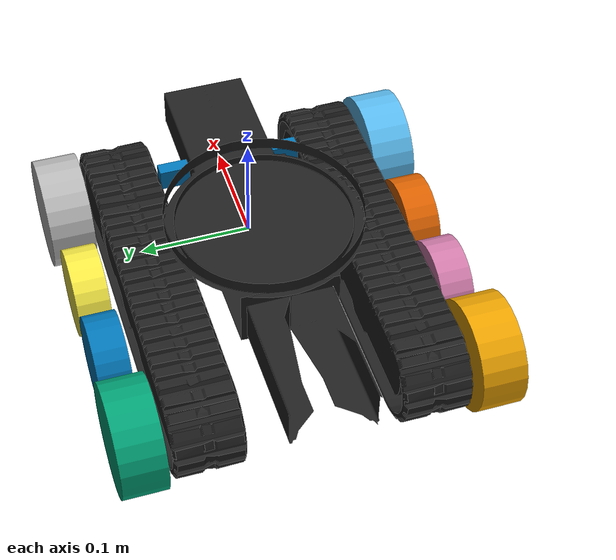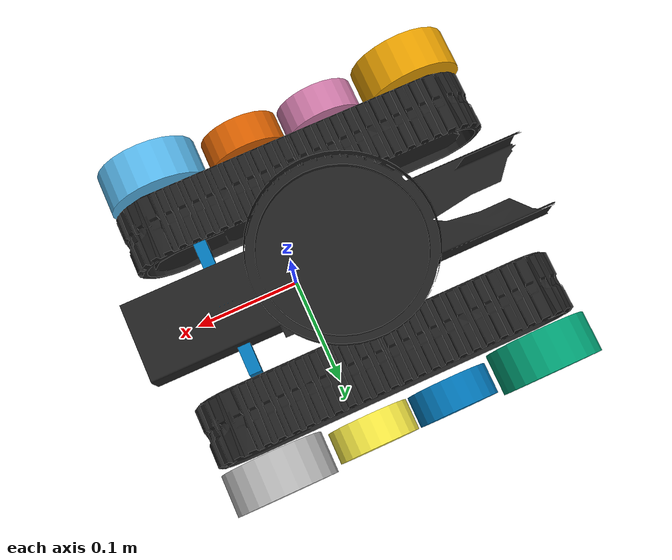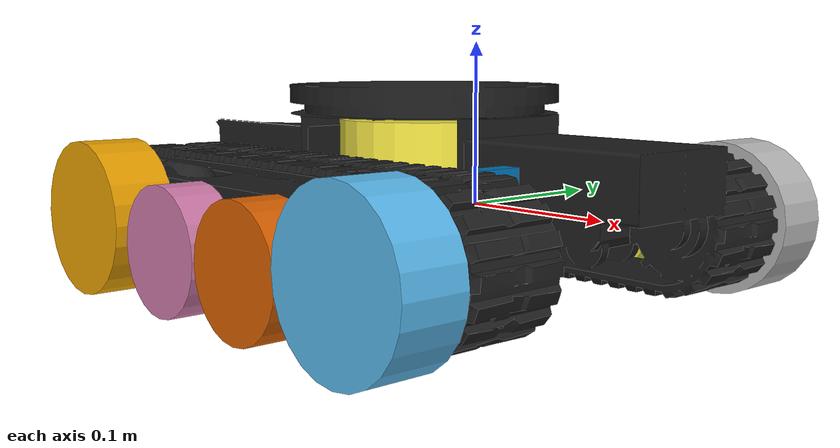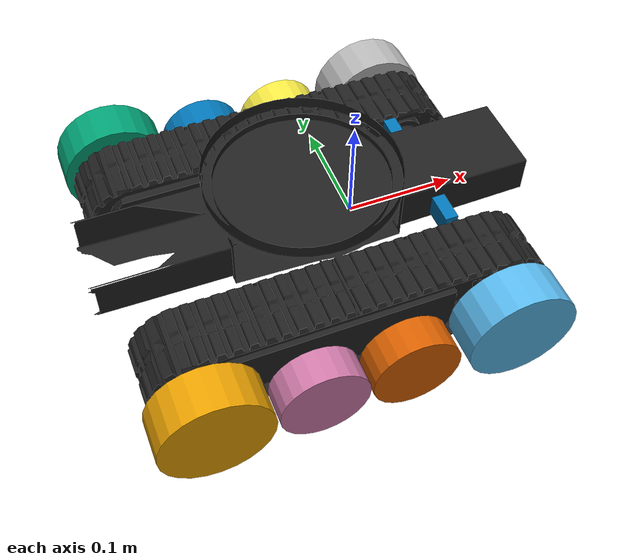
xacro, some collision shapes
<?xml version="1.0" ?>
<robot name="turtlebot3_waffle" xmlns:xacro="http://ros.org/wiki/xacro">
  <xacro:include filename="$(find turtlebot3_description)/urdf/common_properties.xacro"/>
  <xacro:include filename="$(find turtlebot3_description)/urdf/turtlebot3_waffle.gazebo.xacro"/>

  <xacro:property name="r200_cam_rgb_px" value="0.005"/>
  <xacro:property name="r200_cam_rgb_py" value="0.018"/>
  <xacro:property name="r200_cam_rgb_pz" value="0.013"/>
  <xacro:property name="r200_cam_depth_offset" value="0.01"/>

  <link name="base_footprint"/>

  <joint name="base_joint" type="fixed">
    <parent link="base_footprint"/>
    <child link="base_link" />
    <origin xyz="0 0 0.010" rpy="0 0 0"/>
  </joint>

  <link name="base_link">
    <visual>
      <origin xyz="-0.064 0 -0.09" rpy="0 0 0"/>
      <geometry>
        <mesh filename="package://turtlebot3_description/meshes/bases/turtlebot_improv.stl" scale="0.0025 0.0025 0.0025"/>
      </geometry>
      <material name="light_black"/>
    </visual>

    <collision>
      <origin xyz="-0.064 0 0.047" rpy="0 0 0"/>
      <geometry>
        <box size="0.266 0.266 0.094"/>
      </geometry>
    </collision>

    <inertial>
      <origin xyz="0 0 0" rpy="0 0 0"/>
      <mass value="1.3729096e+00"/>
      <inertia ixx="8.7002718e-03" ixy="-4.7576583e-05" ixz="1.1160499e-04"
               iyy="8.6195418e-03" iyz="-3.5422299e-06"
               izz="1.4612727e-02" />
    </inertial>
  </link>

   <!-- linker hinterer Reifen l0oo-->

  <joint name="wheel_left_behind_joint" type="continuous">
    <parent link="base_link"/>
    <child link="wheel_left_behind_link"/>
    <origin xyz="-0.1855 0.155 -0.023" rpy="0 0 0"/>
    <axis xyz="0 1 0"/>
  </joint>

  <link name="wheel_left_behind_link">
    <visual>
      <origin xyz="0 0 0" rpy="1.57 0 0"/>
      <geometry>
     	 <cylinder radius="0.05" length="0.04"/>
      </geometry>
      <material name="dark"/>
    </visual>

    <collision>
      <origin xyz="0 0 0" rpy="1.57 0 0"/>
      <geometry>
        <cylinder length="0.04" radius="0.05"/>
      </geometry>
    </collision>

    <inertial>
      <origin xyz="0 0 0" />
      <mass value="2.8498940e-02" />
      <inertia ixx="1.1175580e-05" ixy="-4.2369783e-11" ixz="-5.9381719e-09"
               iyy="1.1192413e-05" iyz="-1.4400107e-11"
               izz="2.0712558e-05" />
      </inertial>
  </link>

	<!-- linker mittel vorne Reifen loo0o-->

  <joint name="wheel_left_mittelvorne_joint" type="continuous">
    <parent link="base_link"/>
    <child link="wheel_left_mittelvorne_link"/>
    <origin xyz="-0.010 0.155 -0.033" rpy="0 0 0"/>
    <axis xyz="0 1 0"/>
  </joint>

  <link name="wheel_left_mittelvorne_link">
    <visual>
      <origin xyz="0 0 0" rpy="1.57 0 0"/>
      <geometry>
     	 <cylinder radius="0.04" length="0.03"/>
      </geometry>
      <material name="dark"/>
    </visual>

    <collision>
      <origin xyz="0 0 0" rpy="1.57 0 0"/>
      <geometry>
        <cylinder length="0.03" radius="0.04"/>
      </geometry>
    </collision>

    <inertial>
      <origin xyz="0 0 0" />
      <mass value="2.8498940e-02" />
      <inertia ixx="1.1175580e-05" ixy="-4.2369783e-11" ixz="-5.9381719e-09"
               iyy="1.1192413e-05" iyz="-1.4400107e-11"
               izz="2.0712558e-05" />
      </inertial>
  </link>

	<!-- linker mittel hinten Reifen lo0oo-->

  <joint name="wheel_mittelhintenleft_joint" type="continuous">
    <parent link="base_link"/>
    <child link="wheel_mittelhintenleft_link"/>
    <origin xyz="-0.092 0.155 -0.033" rpy="0 0 0"/>
    <axis xyz="0 1 0"/>
  </joint>

  <link name="wheel_mittelhintenleft_link">
    <visual>
      <origin xyz="0 0 0" rpy="1.57 0 0"/>
      <geometry>
     	 <cylinder radius="0.04" length="0.03"/>
      </geometry>
      <material name="dark"/>
    </visual>

    <collision>
      <origin xyz="0 0 0" rpy="1.57 0 0"/>
      <geometry>
        <cylinder length="0.03" radius="0.04"/>
      </geometry>
    </collision>

    <inertial>
      <origin xyz="0 0 0" />
      <mass value="2.8498940e-02" />
      <inertia ixx="1.1175580e-05" ixy="-4.2369783e-11" ixz="-5.9381719e-09"
               iyy="1.1192413e-05" iyz="-1.4400107e-11"
               izz="2.0712558e-05" />
      </inertial>
  </link>

	<!-- rechter mittel vorne Reifen roo0o-->

  <joint name="wheel_right_mittelvorne_joint" type="continuous">
    <parent link="base_link"/>
    <child link="wheel_right_mittelvorne_link"/>
    <origin xyz="-0.010 -0.155 -0.033" rpy="0 0 0"/>
    <axis xyz="0 1 0"/>
  </joint>

  <link name="wheel_right_mittelvorne_link">
    <visual>
      <origin xyz="0 0 0" rpy="1.57 0 0"/>
      <geometry>
     	 <cylinder radius="0.04" length="0.03"/>
      </geometry>
      <material name="dark"/>
    </visual>

    <collision>
      <origin xyz="0 0 0" rpy="1.57 0 0"/>
      <geometry>
        <cylinder length="0.03" radius="0.04"/>
      </geometry>
    </collision>

    <inertial>
      <origin xyz="0 0 0" />
      <mass value="2.8498940e-02" />
      <inertia ixx="1.1175580e-05" ixy="-4.2369783e-11" ixz="-5.9381719e-09"
               iyy="1.1192413e-05" iyz="-1.4400107e-11"
               izz="2.0712558e-05" />
      </inertial>
  </link>

	<!-- rechter mittel hinten Reifen ro0oo-->

  <joint name="wheel_mittelhintenright_joint" type="continuous">
    <parent link="base_link"/>
    <child link="wheel_mittelhintenright_link"/>
    <origin xyz="-0.092 -0.155 -0.033" rpy="0 0 0"/>
    <axis xyz="0 1 0"/>
  </joint>

  <link name="wheel_mittelhintenright_link">
    <visual>
      <origin xyz="0 0 0" rpy="1.57 0 0"/>
      <geometry>
     	 <cylinder radius="0.04" length="0.03"/>
      </geometry>
      <material name="dark"/>
    </visual>

    <collision>
      <origin xyz="0 0 0" rpy="1.57 0 0"/>
      <geometry>
        <cylinder length="0.03" radius="0.04"/>
      </geometry>
    </collision>

    <inertial>
      <origin xyz="0 0 0" />
      <mass value="2.8498940e-02" />
      <inertia ixx="1.1175580e-05" ixy="-4.2369783e-11" ixz="-5.9381719e-09"
               iyy="1.1192413e-05" iyz="-1.4400107e-11"
               izz="2.0712558e-05" />
      </inertial>
  </link>

   <!-- linker vorderer Reifen looo0-->

    <joint name="wheel_left_joint" type="continuous">
    <parent link="base_link"/>
    <child link="wheel_left_link"/>
    <origin xyz="0.085 0.155 -0.023" rpy="0 0 0"/>
    <axis xyz="0 1 0"/>
  </joint>

  <link name="wheel_left_link">
    <visual>
      <origin xyz="0 0 0" rpy="1.57 0 0"/>
      <geometry>
      	<cylinder radius="0.05" length="0.04"/>
      </geometry>
      <material name="dark"/>
    </visual>

    <collision>
      <origin xyz="0 0 0" rpy="1.57 0 0"/>
      <geometry>
        <cylinder length="0.04" radius="0.05"/>
      </geometry>
    </collision>

    <inertial>
      <origin xyz="0 0 0" />
      <mass value="2.8498940e-02" />
      <inertia ixx="1.1175580e-05" ixy="-4.2369783e-11" ixz="-5.9381719e-09"
               iyy="1.1192413e-05" iyz="-1.4400107e-11"
               izz="2.0712558e-05" />
      </inertial>
  </link>

 <!-- rechter hinterer Reifen r0ooo -->

  <joint name="wheel_right_behind_joint" type="continuous">
    <parent link="base_link"/>
    <child link="wheel_right_behind_link"/>
    <origin xyz="-0.1855 -0.155 -0.023" rpy="0 0 0"/>
    <axis xyz="0 1 0"/>
  </joint>

  <link name="wheel_right_behind_link">
    <visual>
      <origin xyz="0 0 0" rpy="1.57 0 0"/>
      <geometry>
     	<cylinder radius="0.05" length="0.04"/>
      </geometry>
      <material name="dark"/>
    </visual>

    <collision>
      <origin xyz="0 0 0" rpy="1.57 0 0"/>
      <geometry>
        <cylinder length="0.04" radius="0.05"/>
      </geometry>
    </collision>

    <inertial>
      <origin xyz="0 0 0" />
      <mass value="2.8498940e-02" />
      <inertia ixx="1.1175580e-05" ixy="-4.2369783e-11" ixz="-5.9381719e-09"
               iyy="1.1192413e-05" iyz="-1.4400107e-11"
               izz="2.0712558e-05" />
      </inertial>
  </link>

   <!-- rechter vorderer Reifen rooo0-->

    <joint name="wheel_right_joint" type="continuous">
    <parent link="base_link"/>
    <child link="wheel_right_link"/>
    <origin xyz="0.085 -0.155 -0.023" rpy="0 0 0"/>
    <axis xyz="0 1 0"/>
  </joint>

  <link name="wheel_right_link">
    <visual>
      <origin xyz="0 0 0" rpy="1.57 0 0"/>
      <geometry>
     	<cylinder radius="0.05" length="0.04"/>
      </geometry>
      <material name="dark"/>
    </visual>

    <collision>
      <origin xyz="0 0 0" rpy="1.57 0 0"/>
      <geometry>
        <cylinder length="0.04" radius="0.05"/>
      </geometry>
    </collision>

    <inertial>
      <origin xyz="0 0 0" />
      <mass value="2.8498940e-02" />
      <inertia ixx="1.1175580e-05" ixy="-4.2369783e-11" ixz="-5.9381719e-09"
               iyy="1.1192413e-05" iyz="-1.4400107e-11"
               izz="2.0712558e-05" />
      </inertial>
  </link>

  <joint name="imu_joint" type="fixed">
    <parent link="base_link"/>
    <child link="imu_link"/>
    <origin xyz="0.0 0 -0.022" rpy="0 0 0"/>
  </joint>

  <link name="imu_link"/>

  <joint name="scan_joint" type="fixed">
    <parent link="base_link"/>
    <child link="base_scan"/>
    <origin xyz="-0.064 0 0.032" rpy="0 0 0"/>
  </joint>

  <link name="base_scan">
    <visual>
      <origin xyz="0 0 0" rpy="0 0 0"/>
      <geometry>
        <mesh filename="package://turtlebot3_description/meshes/sensors/lds.stl" scale="0.001 0.001 0.001"/>
      </geometry>
      <material name="dark"/>
    </visual>

    <collision>
      <origin xyz="0.015 0 -0.0065" rpy="0 0 0"/>
      <geometry>
        <cylinder length="0.0315" radius="0.055"/>
      </geometry>
    </collision>

    <inertial>
      <mass value="0.114" />
      <origin xyz="0 0 0" />
      <inertia ixx="0.001" ixy="0.0" ixz="0.0"
               iyy="0.001" iyz="0.0"
               izz="0.001" />
    </inertial>
  </link>

  <joint name="camera_joint" type="fixed">
    <origin xyz="0.064 -0.065 0.004" rpy="0 0 0"/>
    <parent link="base_link"/>
    <child link="camera_link"/>
  </joint>

  <link name="camera_link">
    <visual>
     <origin xyz="0 0 0" rpy="1.57 0 1.57"/>
      <geometry>
       <mesh filename="package://turtlebot3_description/meshes/sensors/r200.dae" />
      </geometry>
    </visual>
    <collision>
      <origin xyz="0.003 0.065 0.007" rpy="0 0 0"/>
      <geometry>
        <box size="0.012 0.132 0.020"/>
      </geometry>
    </collision>

    <!-- This inertial field needs doesn't contain reliable data!! -->
  </link>

  <joint name="camera_rgb_joint" type="fixed">
    <origin xyz="${r200_cam_rgb_px} ${r200_cam_rgb_py} ${r200_cam_rgb_pz}" rpy="0 0 0"/>
    <parent link="camera_link"/>
    <child link="camera_rgb_frame"/>
  </joint>
  <link name="camera_rgb_frame"/>

  <joint name="camera_rgb_optical_joint" type="fixed">
    <origin xyz="0 0 0" rpy="-1.57 0 -1.57"/>
    <parent link="camera_rgb_frame"/>
    <child link="camera_rgb_optical_frame"/>
  </joint>
  <link name="camera_rgb_optical_frame"/>

  <joint name="camera_depth_joint" type="fixed">
    <origin xyz="${r200_cam_rgb_px} ${r200_cam_rgb_py + r200_cam_depth_offset} ${r200_cam_rgb_pz}" rpy="0 0 0"/>
    <parent link="camera_link"/>
    <child link="camera_depth_frame"/>
  </joint>
  <link name="camera_depth_frame"/>

  <joint name="camera_depth_optical_joint" type="fixed">
    <origin xyz="0 0 0" rpy="-1.57 0 -1.57"/>
    <parent link="camera_depth_frame"/>
    <child link="camera_depth_optical_frame"/>
  </joint>
  <link name="camera_depth_optical_frame"/>

</robot>
